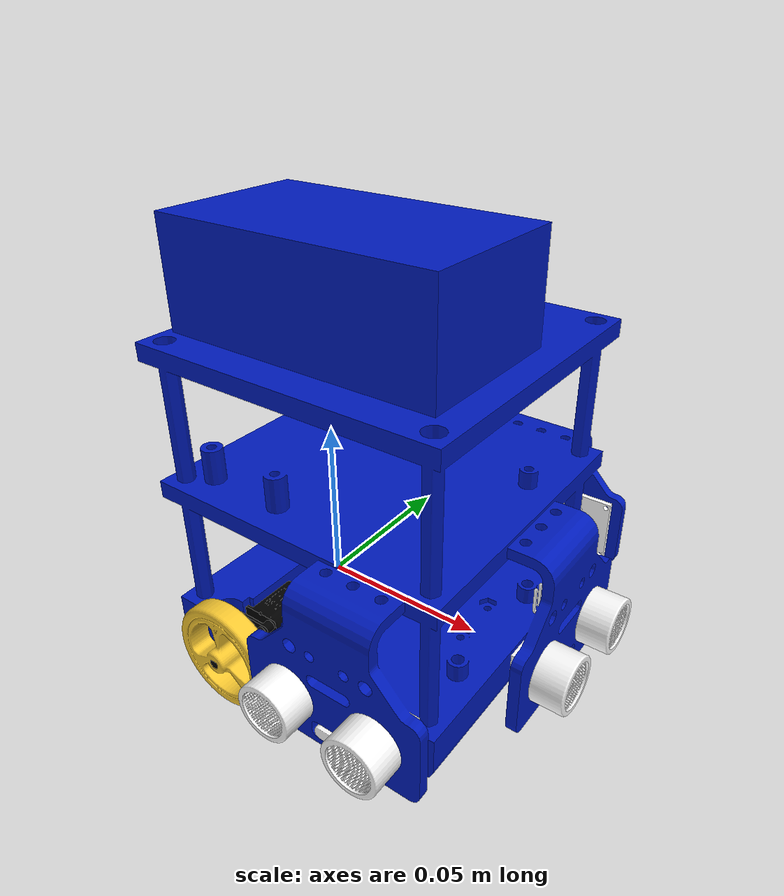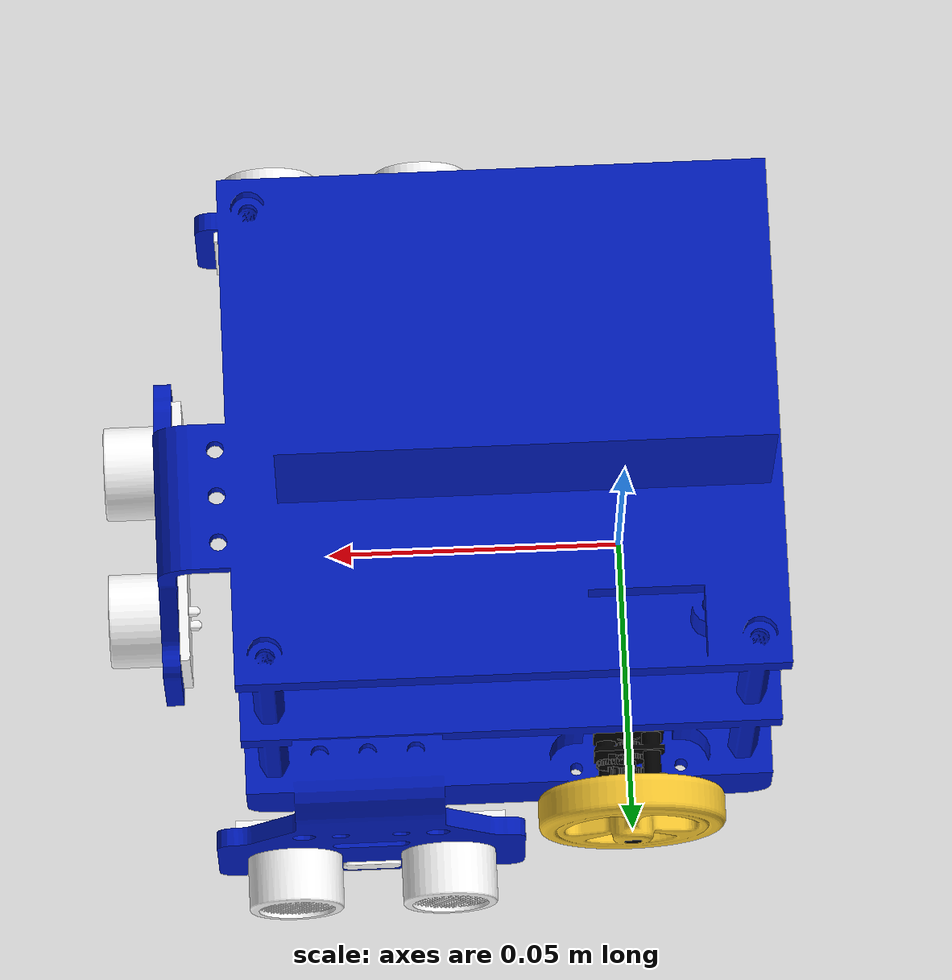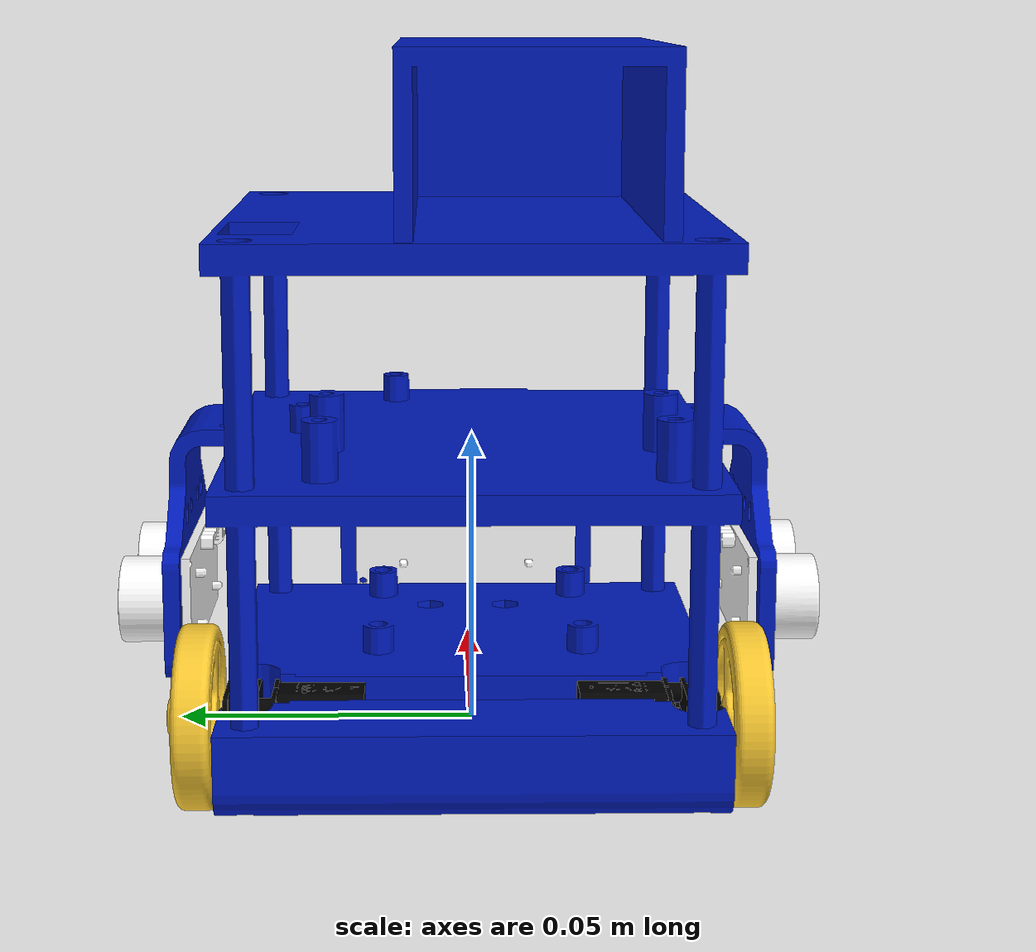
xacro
<?xml version="1.0" ?>
<robot name="test" xmlns:xacro="http://www.ros.org/wiki/xacro">

<xacro:include filename="$(find test_description)/urdf/materials.xacro" />
<xacro:include filename="$(find test_description)/urdf/test.trans" />
<xacro:include filename="$(find test_description)/urdf/test.gazebo" />

<link name="base_link">

</link>

<link name="chassis_link">
  <inertial>
    <origin xyz="0.024063315119963898 -0.0014230206543532622 0.037568955648164364" rpy="0 0 0"/>
    <mass value="0.2810336598854991"/>
    <inertia ixx="0.000655" iyy="0.000675" izz="0.000388" ixy="-2e-06" iyz="2.6e-05" ixz="1.3e-05"/>
  </inertial>
  <visual>
   <origin xyz="0.02425 0.0 0.0" rpy="0 0 0"/>
    <geometry>
      <mesh filename="package://test_description/meshes/chassis_link.stl" scale="0.001 0.001 0.001"/>
    </geometry>
    <material name="blue"/>
  </visual>
  <collision>
    <origin xyz="0.02425 0.0 0.0" rpy="0 0 0"/>
    <geometry>
      <mesh filename="package://test_description/meshes/chassis_link.stl" scale="0.001 0.001 0.001"/>
    </geometry>
  </collision>
</link>

<link name="right_motor_link">
  <inertial>
    <origin xyz="-2.9308339088481426e-05 -0.029313071910399256 0.001997865444024621" rpy="0 0 0"/>
    <mass value="0.016631878535316905"/>
    <inertia ixx="1e-06" iyy="0.0" izz="1e-06" ixy="-0.0" iyz="0.0" ixz="-0.0"/>
  </inertial>
  <visual>
    <origin xyz="0.0 0.038 0.0" rpy="0 0 0"/>
    <geometry>
      <mesh filename="package://test_description/meshes/right_motor_link.stl" scale="0.001 0.001 0.001"/>
    </geometry>
    <material name="black"/>
  </visual>
</link>

<link name="left_motor_link">
  <inertial>
    <origin xyz="2.9308339089067305e-05 0.029313071910399308 0.0019978654440246215" rpy="0 0 0"/>
    <mass value="0.016631878535316905"/>
    <inertia ixx="1e-06" iyy="0.0" izz="1e-06" ixy="-0.0" iyz="-0.0" ixz="0.0"/>
  </inertial>
  <visual>
    <origin xyz="0.0 -0.038 0.0" rpy="0 0 0"/>
    <geometry>
      <mesh filename="package://test_description/meshes/left_motor_link.stl" scale="0.001 0.001 0.001"/>
    </geometry>
    <material name="black"/>
  </visual>
</link>

<link name="right_wheel_link">
  <inertial>
    <origin xyz="-7.612895084029129e-10 0.005217819362884839 2.848070660199786e-06" rpy="0 0 0"/>
    <mass value="0.025217112456370292"/>
    <inertia ixx="2e-06" iyy="4e-06" izz="2e-06" ixy="-0.0" iyz="0.0" ixz="0.0"/>
  </inertial>
  <visual>
    <origin xyz="-0.0 0.0525 -0.0" rpy="0 0 0"/>
    <geometry>
      <mesh filename="package://test_description/meshes/right_wheel_link.stl" scale="0.001 0.001 0.001"/>
    </geometry>
    <material name="yellow"/>
  </visual>
  <collision>
    <origin xyz="-0.0 0.0525 -0.0" rpy="0 0 0"/>
    <geometry>
      <mesh filename="package://test_description/meshes/right_wheel_link.stl" scale="0.001 0.001 0.001"/>
    </geometry>
  </collision>
</link>

<link name="left_wheel_link">
  <inertial>
    <origin xyz="7.612905830984524e-10 -0.005217819362884721 2.848070660200064e-06" rpy="0 0 0"/>
    <mass value="0.025217112456370292"/>
    <inertia ixx="2e-06" iyy="4e-06" izz="2e-06" ixy="-0.0" iyz="-0.0" ixz="-0.0"/>
  </inertial>
  <visual>
    <origin xyz="-0.0 -0.0525 -0.0" rpy="0 0 0"/>
    <geometry>
      <mesh filename="package://test_description/meshes/left_wheel_link.stl" scale="0.001 0.001 0.001"/>
    </geometry>
    <material name="yellow"/>
  </visual>
  <collision>
    <origin xyz="-0.0 -0.0525 -0.0" rpy="0 0 0"/>
    <geometry>
      <mesh filename="package://test_description/meshes/left_wheel_link.stl" scale="0.001 0.001 0.001"/>
    </geometry>
  </collision>
</link>

<link name="passive_wheel_link">
  <inertial>
    <origin xyz="0.0507501956771236 -5.233273108438213e-07 -0.0061150863631835774" rpy="0 0 0"/>
    <mass value="0.014352135432571455"/>
    <inertia ixx="0.0" iyy="0.0" izz="0.0" ixy="-0.0" iyz="0.0" ixz="-0.0"/>
  </inertial>
  <visual>
    <origin xyz="-0.05075 0.0 0.0025" rpy="0 0 0"/>
    <geometry>
      <mesh filename="package://test_description/meshes/passive_wheel_link.stl" scale="0.001 0.001 0.001"/>
    </geometry>
    <material name="yellow"/>
  </visual>
  <collision>
    <origin xyz="-0.05075 0.0 0.0025" rpy="0 0 0"/>
    <geometry>
      <mesh filename="package://test_description/meshes/passive_wheel_link.stl" scale="0.001 0.001 0.001"/>
    </geometry>
  </collision>
</link>

<link name="left_ultrasonic_sensor_link">
  <inertial>
    <origin xyz="0.04475000443331241 0.05426424228848445 0.013949368156891366" rpy="0 0 0"/>
    <mass value="0.02528835837153393"/>
    <inertia ixx="1e-06" iyy="5e-06" izz="5e-06" ixy="-0.0" iyz="0.0" ixz="0.0"/>
  </inertial>
  <visual>
    <origin xyz="-0.04475 -0.05250 -0.012" rpy="0 0 0"/>
    <geometry>
      <mesh filename="package://test_description/meshes/left_ultrasonic_sensor_link.stl" scale="0.001 0.001 0.001"/>
    </geometry>
    <material name="white"/>
  </visual>
    <collision>
    <origin xyz="-0.04475 -0.05250 -0.012" rpy="0 0 0"/>
    <geometry>
      <mesh filename="package://test_description/meshes/left_ultrasonic_sensor_link.stl" scale="0.001 0.001 0.001"/>
    </geometry>
  </collision>
</link>

<link name="center_ultrasonic_sensor_link">
  <inertial>
    <origin xyz="0.07751424228848439 -4.433312486931501e-09 0.013949368156891372" rpy="0 0 0"/>
    <mass value="0.02528835837153393"/>
    <inertia ixx="5e-06" iyy="1e-06" izz="5e-06" ixy="0.0" iyz="-0.0" ixz="0.0"/>
  </inertial>
  <visual>
    <origin xyz="-0.07575 0.0 -0.012" rpy="0 0 0"/>
    <geometry>
      <mesh filename="package://test_description/meshes/center_ultrasonic_sensor_link.stl" scale="0.001 0.001 0.001"/>
    </geometry>
    <material name="white"/>
  </visual>
  <collision>
    <origin xyz="-0.07575 0.0 -0.012" rpy="0 0 0"/>
    <geometry>
      <mesh filename="package://test_description/meshes/center_ultrasonic_sensor_link.stl" scale="0.001 0.001 0.001"/>
    </geometry>
  </collision>
</link>

<link name="right_ultrasonic_sensor_link">
  <inertial>
    <origin xyz="0.044749995566687614 -0.0542642422884845 0.013949368156891373" rpy="0 0 0"/>
    <mass value="0.02528835837153393"/>
    <inertia ixx="1e-06" iyy="5e-06" izz="5e-06" ixy="-0.0" iyz="-0.0" ixz="-0.0"/>
  </inertial>
  <visual>
    <origin xyz="-0.04475 0.05250 -0.012" rpy="0 0 0"/>
    <geometry>
      <mesh filename="package://test_description/meshes/right_ultrasonic_sensor_link.stl" scale="0.001 0.001 0.001"/>
    </geometry>
    <material name="white"/>
  </visual>
  <collision>
    <origin xyz="-0.04475 0.05250 -0.012" rpy="0 0 0"/>
    <geometry>
      <mesh filename="package://test_description/meshes/right_ultrasonic_sensor_link.stl" scale="0.001 0.001 0.001"/>
    </geometry>
  </collision>
</link>

<link name="optical_left_ultrasonic_sensor_link">
</link>

<link name="optical_center_ultrasonic_sensor_link">
</link>

<link name="optical_right_ultrasonic_sensor_link">
</link>

<joint name="chassis_joint" type="fixed">
  <origin xyz="-0.02425 0.0 0.0" rpy="0 0 0"/>
  <parent link="base_link"/>
  <child link="chassis_link"/>
</joint>

<joint name="motor_right_joint" type="fixed">
  <origin xyz="0.0 -0.038 0.0" rpy="0 0 0"/>
  <parent link="base_link"/>
  <child link="right_motor_link"/>
</joint>

<joint name="left_motor_joint" type="fixed">
  <origin xyz="0.0 0.038 0.0" rpy="0 0 0"/>
  <parent link="base_link"/>
  <child link="left_motor_link"/>
</joint>

<joint name="right_wheel_joint" type="continuous">
  <origin xyz="0.0 -0.0145 0.0" rpy="0 0 0"/>
  <parent link="right_motor_link"/>
  <child link="right_wheel_link"/>
  <axis xyz="0.0 1.0 0.0"/>
</joint>

<joint name="left_wheel_joint" type="continuous">
  <origin xyz="0.0 0.0145 0.0" rpy="0 0 0"/>
  <parent link="left_motor_link"/>
  <child link="left_wheel_link"/>
  <axis xyz="0.0 1.0 0.0"/>
</joint>

<joint name="Rigido 6" type="fixed">
  <origin xyz="0.05075 0.0 -0.0025" rpy="0 0 0"/>
  <parent link="base_link"/>
  <child link="passive_wheel_link"/>
</joint>

<joint name="Rigido 7" type="fixed">
  <origin xyz="0.04475 0.05250 0.012" rpy="0 0 0"/>
  <parent link="base_link"/>
  <child link="left_ultrasonic_sensor_link"/>
</joint>

<joint name="Rigido 8" type="fixed">
  <origin xyz="0.07575 0.0 0.012" rpy="0 0 0"/>
  <parent link="base_link"/>
  <child link="center_ultrasonic_sensor_link"/>
</joint>

<joint name="Rigido 9" type="fixed">
  <origin xyz="0.04475 -0.05250 0.012" rpy="0 0 0"/>
  <parent link="base_link"/>
  <child link="right_ultrasonic_sensor_link"/>
</joint>

<joint name="optical_left_ultrasonic_sensor_joint" type="fixed">
  <origin xyz="0.04475 0.05250 0.012" rpy="0 0 ${pi/2}"/>
  <parent link="base_link"/>
  <child link="optical_left_ultrasonic_sensor_link"/>
</joint>

<joint name="optical_center_ultrasonic_sensor_joint" type="fixed">
  <parent link="base_link"/>
  <child link="optical_center_ultrasonic_sensor_link"/>
  <origin xyz="0.07575 0.0 0.012" rpy="0 0 0"/>
</joint>

<joint name="optical_right_ultrasonic_sensor_joint" type="fixed">
  <parent link="base_link"/>
  <child link="optical_right_ultrasonic_sensor_link"/>
  <origin xyz="0.04475 -0.05250 0.012" rpy="0 0 ${-pi/2}"/>
</joint>

</robot>

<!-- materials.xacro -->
<robot name="test" xmlns:xacro="http://www.ros.org/wiki/xacro" >

<material name="blue">
  <color rgba="0 0.1058823529411765 0.7411764705882353 1"/>
</material>

<material name="white">
  <color rgba="1 1 1 1"/>
</material>

<material name="black">
  <color rgba="0 0 0 1"/>
</material>

<material name="yellow">
  <color rgba="0.98039215686 0.79215686274 0.19215686274 1"/>
</material>

</robot>

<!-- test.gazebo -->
<robot name="test" xmlns:xacro="http://www.ros.org/wiki/xacro" >

<xacro:property name="body_color" value="Gazebo/SkyBlue" />
<xacro:property name="sensor_color" value="Gazebo/White" />
<xacro:property name="motor_color" value="Gazebo/Black" />
<xacro:property name="wheel_color" value="Gazebo/ZincYellow" />

<gazebo>
  <plugin name="differential_drive_controller" filename="libgazebo_ros_diff_drive.so">

    <!-- Plugin update rate in Hz -->
    <updateRate>50</updateRate>

    <!-- Name of left joint, defaults to `left_joint` -->
    <leftJoint>left_wheel_joint</leftJoint>

    <!-- Name of right joint, defaults to `right_joint` -->
    <rightJoint>right_wheel_joint</rightJoint>

    <!-- The distance from the center of one wheel to the other, in meters, defaults to 0.34 m -->
    <wheelSeparation>0.105</wheelSeparation>

    <!-- Diameter of the wheels, in meters, defaults to 0.15 m -->
    <wheelDiameter>0.032</wheelDiameter>

    <!-- Wheel acceleration, in rad/s^2, defaults to 0.0 rad/s^2 -->
    <wheelAcceleration>1.0</wheelAcceleration>

    <!-- Maximum torque which the wheels can produce, in Nm, defaults to 5 Nm -->
    <wheelTorque>20</wheelTorque>

    <!-- Topic to receive geometry_msgs/Twist message commands, defaults to `cmd_vel` -->
    <commandTopic>cmd_vel</commandTopic>

    <!-- Topic to publish nav_msgs/Odometry messages, defaults to `odom` -->
    <odometryTopic>odom</odometryTopic>

    <!-- Odometry frame, defaults to `odom` -->
    <odometryFrame>odom</odometryFrame>

    <!-- Robot frame to calculate odometry from, defaults to `base_footprint` -->
    <robotBaseFrame>base_link</robotBaseFrame>

    <!-- Odometry source, 0 for ENCODER, 1 for WORLD, defaults to WORLD -->
    <odometrySource>1</odometrySource>

    <!-- Set to true to publish transforms for the wheel links, defaults to false -->
    <publishWheelTF>true</publishWheelTF>

    <!-- Set to true to publish transforms for the odometry, defaults to true -->
    <publishOdom>true</publishOdom>

    <!-- Set to true to publish sensor_msgs/JointState on /joint_states for the wheel joints, defaults to false -->
    <publishWheelJointState>true</publishWheelJointState>

    <!-- Set to true to swap right and left wheels, defaults to true -->
    <legacyMode>true</legacyMode>
  </plugin>
</gazebo>

<gazebo reference="base_link">
  <material>${body_color}</material>

  <selfCollide>true</selfCollide>
  <gravity>true</gravity>
</gazebo>

<gazebo reference="chassis_link">
  <material>${body_color}</material>

  <selfCollide>true</selfCollide>
</gazebo>

<gazebo reference="right_motor_link">
  <material>${motor_color}</material>

  <selfCollide>true</selfCollide>
</gazebo>

<gazebo reference="left_motor_link">
  <material>${motor_color}</material>

  <selfCollide>true</selfCollide>
</gazebo>

<gazebo reference="right_wheel_link">
  <material>${wheel_color}</material>

  <selfCollide>true</selfCollide>
</gazebo>

<gazebo reference="left_wheel_link">
  <material>${wheel_color}</material>

  <selfCollide>true</selfCollide>
</gazebo>

<gazebo reference="passive_wheel_link">
  <material>${wheel_color}</material>
  <mu1>0.2</mu1>
  <mu2>0.2</mu2>
  <selfCollide>true</selfCollide>
</gazebo>

<gazebo reference="left_ultrasonic_sensor_link">
  <material>${sensor_color}</material>
  <selfCollide>true</selfCollide>
</gazebo>

<gazebo reference="center_ultrasonic_sensor_link">
  <material>${sensor_color}</material>
  <selfCollide>true</selfCollide>
</gazebo>

<gazebo reference="right_ultrasonic_sensor_link">
  <material>${sensor_color}</material>
  <selfCollide>true</selfCollide>
</gazebo>

<gazebo reference="optical_left_ultrasonic_sensor_link">
  <sensor type="ray" name="sonar">
    <visualize>true</visualize>
    <update_rate>50</update_rate>
    <ray>
      <scan>
        <horizontal>
          <samples>10</samples>
          <resolution>1.0</resolution>
          <min_angle>-0.1309</min_angle>
          <max_angle>0.1309</max_angle>
        </horizontal>
        <vertical>
          <samples>10</samples>
          <resolution>1</resolution>
          <min_angle>-0.1309</min_angle>
          <max_angle>0.1309</max_angle>
        </vertical>
      </scan>
      <range>
        <min>0.01</min>
        <max>2</max>
        <resolution>0.02</resolution>
      </range>
    </ray>
    <plugin filename="libgazebo_ros_range.so" name="gazebo_ros_range">
      <gaussianNoise>0.005</gaussianNoise>
      <alwaysOn>true</alwaysOn>
      <updateRate>50</updateRate>
      <topicName>/sonar/left</topicName>
      <frameName>optical_left_ultrasonic_sensor_link</frameName>
      <fov>0.2967</fov>
      <radiation>ultrasound</radiation>
    </plugin>
  </sensor>
</gazebo>

<gazebo reference="optical_center_ultrasonic_sensor_link">
  <sensor type="ray" name="sonar">
    <visualize>true</visualize>
    <update_rate>50</update_rate>
    <ray>
      <scan>
        <horizontal>
          <samples>10</samples>
          <resolution>1.0</resolution>
          <min_angle>-0.1309</min_angle>
          <max_angle>0.1309</max_angle>
        </horizontal>
        <vertical>
          <samples>10</samples>
          <resolution>1</resolution>
          <min_angle>-0.1309</min_angle>
          <max_angle>0.1309</max_angle>
        </vertical>
      </scan>
      <range>
        <min>0.01</min>
        <max>2</max>
        <resolution>0.02</resolution>
      </range>
    </ray>
    <plugin filename="libgazebo_ros_range.so" name="gazebo_ros_range">
      <gaussianNoise>0.005</gaussianNoise>
      <alwaysOn>true</alwaysOn>
      <updateRate>50</updateRate>
      <topicName>/sonar/center</topicName>
      <frameName>optical_center_ultrasonic_sensor_link</frameName>
      <fov>0.2967</fov>
      <radiation>ultrasound</radiation>
    </plugin>
  </sensor>
</gazebo>

<gazebo reference="optical_right_ultrasonic_sensor_link">
  <sensor type="ray" name="sonar">
    <visualize>true</visualize>
    <update_rate>50</update_rate>
    <ray>
      <scan>
        <horizontal>
          <samples>10</samples>
          <resolution>1.0</resolution>
          <min_angle>-0.1309</min_angle>
          <max_angle>0.1309</max_angle>
        </horizontal>
        <vertical>
          <samples>10</samples>
          <resolution>1</resolution>
          <min_angle>-0.1309</min_angle>
          <max_angle>0.1309</max_angle>
        </vertical>
      </scan>
      <range>
        <min>0.01</min>
        <max>2</max>
        <resolution>0.02</resolution>
      </range>
    </ray>
    <plugin filename="libgazebo_ros_range.so" name="gazebo_ros_range">
      <gaussianNoise>0.005</gaussianNoise>
      <alwaysOn>true</alwaysOn>
      <updateRate>50</updateRate>
      <topicName>/sonar/right</topicName>
      <frameName>optical_right_ultrasonic_sensor_link</frameName>
      <fov>0.2967</fov>
      <radiation>ultrasound</radiation>
    </plugin>
  </sensor>
</gazebo>

</robot>
